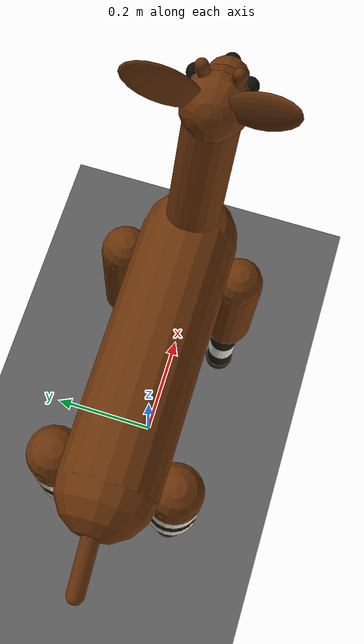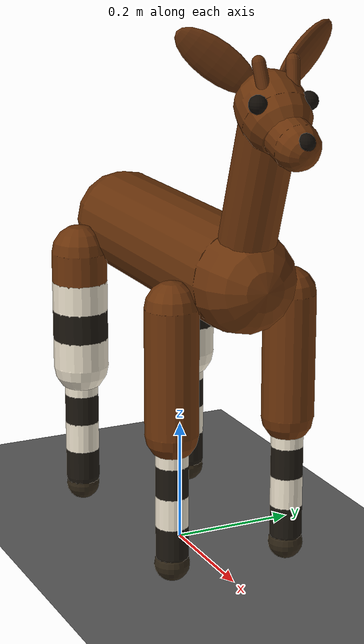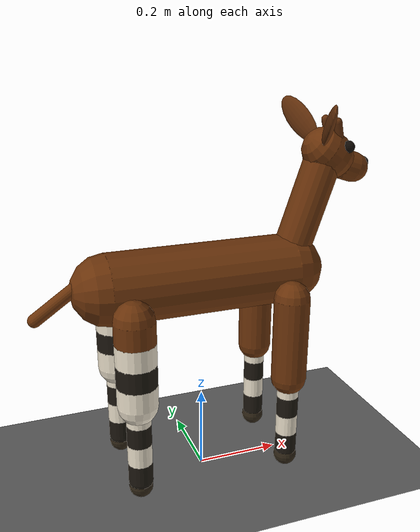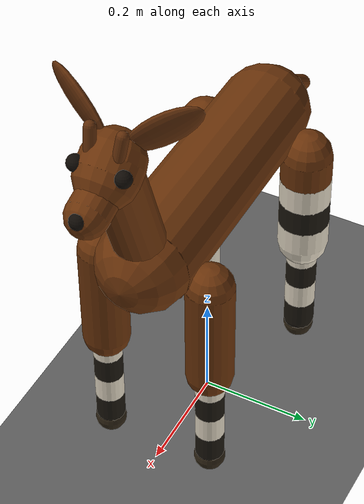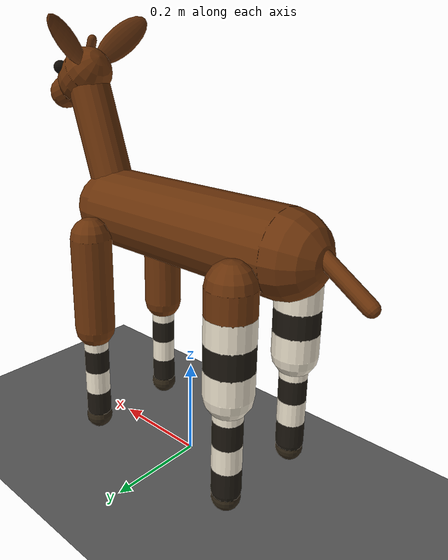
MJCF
<mujoco model="okapi">

  <!-- ── Compiler ──────────────────────────────────────────────────────────── -->
  <compiler angle="radian" autolimits="true"/>

  <!-- ── Physics (MJX-optimised) ───────────────────────────────────────────── -->
  <!--   implicitfast  : stable at larger dt, ideal for GPU rollouts           -->
  <!--   CG solver     : fast sparse solve, native to MJX                      -->
  <!--   low iter count: keeps per-step cost cheap on GPU                      -->
  <option
    timestep      = "0.004"
    integrator    = "RK4"
    iterations    = "1"
    ls_iterations = "5"
    gravity       = "0 0 -9.81"/>

  <size nconmax="100" njmax="500"/>

  <!-- ── Visuals ───────────────────────────────────────────────────────────── -->
  <visual>
    <map znear="0.005" zfar="60"/>
    <rgba haze="0.18 0.26 0.36 1"/>
    <global offwidth="1280" offheight="720" elevation="-20" azimuth="130"/>
    <quality shadowsize="4096" offsamples="8"/>
  </visual>

  <statistic center="0 0 0.4" extent="1.6"/>

  <!-- ── Assets ────────────────────────────────────────────────────────────── -->
  <asset>
    <texture type="skybox" builtin="gradient"
             rgb1=".45 .62 .78" rgb2=".06 .10 .16" width="512" height="512"/>
    <texture name="texplane" type="2d" builtin="checker"
             rgb1=".28 .28 .28" rgb2=".46 .46 .46" width="512" height="512"/>
    <material name="MatPlane" reflectance="0.3" texture="texplane"
              texrepeat="5 5" texuniform="true"/>

  </asset>

  <!-- ── Defaults ──────────────────────────────────────────────────────────── -->
  <!--   class "vis"  : decorative geoms — no collision, zero mass             -->
  <!--   class "phys" : physical limb geoms — collision on                     -->
  <!--   class "foot" : high-friction foot spheres                             -->
  <default>
    <geom condim="3" friction="0.8 0.1 0.1" solref="0.02 1" solimp="0.9 0.95 0.001"/>
    <joint type="hinge" limited="true" damping="1.0" armature="0.01" frictionloss="0.01"/>
    <!-- position actuator defaults (kp overridden per-joint below) -->

    <default class="vis">
      <geom contype="0" conaffinity="0" mass="0"/>
    </default>
    <default class="phys">
      <geom contype="1" conaffinity="1" rgba="0.42 0.20 0.04 1"/>
    </default>
    <default class="foot">
      <geom type="sphere" size="0.028" contype="1" conaffinity="1"
            rgba="0.18 0.14 0.08 1" friction="1.4 0.05 0.05" solref="0.01 1"/>
    </default>
  </default>

  <!--  WORLD                                                                   -->
  <worldbody>
    <light name="sun"  directional="true" diffuse=".92 .86 .72" specular=".5 .45 .3"
           pos="5 -4 14" dir="-0.35 0.28 -5"/>
    <light name="fill" directional="true" diffuse=".28 .33 .42" specular="0 0 0"
           pos="-5 5 6" dir="0.5 -0.5 -1"/>
    <geom name="floor" size="0 0 .5" type="plane"
          material="MatPlane" contype="1" conaffinity="1"/>

    <body name="torso" pos="0 0 0.5">
      <camera name="track" pos="0.846 -1.3 0.416" xyaxes="0.866 0.500 0.000 -0.171 0.296 0.940" mode="trackcom"/>
      <camera name="top" pos="-1.5 0 1.5" xyaxes="0 -1 0 0.7 0 0.7" mode="trackcom"/>
      <camera name="side" pos="0 -2 .8" xyaxes="1 0 0 0 1 2" mode="trackcom"/>
      <camera name="back" pos="-1.5 0 .5" xyaxes="0 -1 0 1 0 3" mode="trackcom"/>

      <freejoint name="root"/>

      <!-- IMU site — used to compute gravity vector and local velocities -->
      <site name="imu" pos="0 0 0" size="0.005" rgba="0 0 1 0"/>

      <!-- Physics capsule: body collision + inertia -->
      <geom name="torso" type="capsule" size="0.082"
            fromto="-0.22 0 0  0.22 0 0" class="phys"/>

      <!-- Neck (visual) -->
      <geom name="neck" type="capsule" size="0.044"
            fromto="0.22 0 0.022  0.3 0 0.255"
            rgba="0.42 0.20 0.04 1" class="vis"/>

      <!-- Cranium — sphere gives a round, natural skull shape.
           Center (0.30, 0, 0.275), radius 0.058.
           Neck tip at (0.28, 0, 0.255) sits inside the sphere → clean merge. -->
      <geom name="head" type="capsule" size="0.052" fromto="0.3 0 0.275  0.32 0 0.26"
            rgba="0.42 0.20 0.04 1" class="vis"/>

      <!-- Snout — short muzzle starting from front of cranium sphere.
           ~55% of skull diameter long, matching okapi proportions.            -->
      <geom name="snout" type="capsule" size="0.035"
            fromto="0.35 0 0.240  0.38 0 0.23"
            rgba="0.42 0.20 0.04 1" class="vis"/>
      <geom name="nose" type="sphere" size="0.014"
            rgba="0.06 0.04 0.02 1" pos="0.405 0 0.24" class="vis"/>

      <!-- Eyes — on the front-side of the sphere -->d
      <geom name="eye_l" type="sphere" size="0.014"
            rgba="0.06 0.04 0.02 1" pos="0.34  0.04 0.285" class="vis"/>
      <geom name="eye_r" type="sphere" size="0.014"
            rgba="0.06 0.04 0.02 1" pos="0.34 -0.04 0.285" class="vis"/>

      <geom name="ossicone_l" type="capsule" size="0.01 0.02 0.030"
            rgba="0.38 0.18 0.04 1" pos="0.32  0.025 0.32"
            euler=" -0.1 -0.250 0.1" class="vis"/>
      <geom name="ossicone_r" type="capsule" size="0.01 0.02 0.030"
            rgba="0.38 0.18 0.04 1" pos="0.32 -0.025 0.32"
            euler="0.1 -0.250 -0.1" class="vis"/>

      <geom name="ear_l" type="ellipsoid" size="0.01 0.03 0.070"
            rgba="0.38 0.18 0.04 1" pos="0.27  0.07 0.338"
            euler=" -0.9 -0.250 0.4" class="vis"/>
      <geom name="ear_r" type="ellipsoid" size="0.01 0.03 0.070"
            rgba="0.38 0.18 0.04 1" pos="0.27 -0.07 0.338"
            euler="0.9 -0.250 -0.4" class="vis"/>

      <!-- Tail (visual) — starts from upper-rear of torso, carried higher -->
      <geom name="tail" type="capsule" size="0.015"
            fromto="-0.22 0 0.06  -0.38 0 -0.05"
            rgba="0.42 0.20 0.04 1" class="vis"/>

      <!-- ── FRONT LEFT ──────────────────────────────────────────────────── -->
      <body name="thigh_FL" pos="0.185  0.100 -0.040">
        <joint name="hip_ab_FL" axis="1 0 0" range="-0.50 0.50"/>
        <joint name="hip_fl_FL" axis="0 1 0" range="-1.05 0.80"/>
        <geom  name="thigh_FL"  type="capsule" size="0.042"
               fromto="0 0 0  0 0 -0.200" class="phys"/>
        <body name="shin_FL" pos="0 0 -0.200">
          <joint name="knee_FL" axis="0 1 0" range="-2.60 0.05"/>
          <geom  name="shin_FL"   type="capsule" size="0.025" fromto="0 0 0  0 0 -0.200" class="phys"/>
          <!-- visual stripe bands — no mass, no collision -->
          <geom name="shin_FL_v1" type="capsule" size="0.026" fromto="0 0 0      0 0 -0.050" rgba="0.90 0.86 0.78 1" class="vis"/>
          <geom name="shin_FL_v2" type="capsule" size="0.026" fromto="0 0 -0.050 0 0 -0.100" rgba="0.10 0.08 0.05 1" class="vis"/>
          <geom name="shin_FL_v3" type="capsule" size="0.026" fromto="0 0 -0.100 0 0 -0.150" rgba="0.90 0.86 0.78 1" class="vis"/>
          <geom name="shin_FL_v4" type="capsule" size="0.026" fromto="0 0 -0.150 0 0 -0.200" rgba="0.10 0.08 0.05 1" class="vis"/>
          <body name="foot_FL" pos="0 0 -0.214">
            <site name="foot_FL" pos="0 0 0" size="0.005" rgba="0 1 0 0"/>
            <geom name="foot_FL" class="foot"/>
          </body>
        </body>
      </body>

      <!-- ── FRONT RIGHT ─────────────────────────────────────────────────── -->
      <body name="thigh_FR" pos="0.185 -0.100 -0.040">
        <joint name="hip_ab_FR" axis="1 0 0" range="-0.50 0.50"/>
        <joint name="hip_fl_FR" axis="0 1 0" range="-1.05 0.80"/>
        <geom  name="thigh_FR"  type="capsule" size="0.042"
               fromto="0 0 0  0 0 -0.200" class="phys"/>
        <body name="shin_FR" pos="0 0 -0.200">
          <joint name="knee_FR" axis="0 1 0" range="-2.60 0.05"/>
          <geom  name="shin_FR"   type="capsule" size="0.025" fromto="0 0 0  0 0 -0.200" class="phys"/>
          <!-- visual stripe bands — no mass, no collision -->
          <geom name="shin_FR_v1" type="capsule" size="0.026" fromto="0 0 0      0 0 -0.050" rgba="0.90 0.86 0.78 1" class="vis"/>
          <geom name="shin_FR_v2" type="capsule" size="0.026" fromto="0 0 -0.050 0 0 -0.100" rgba="0.10 0.08 0.05 1" class="vis"/>
          <geom name="shin_FR_v3" type="capsule" size="0.026" fromto="0 0 -0.100 0 0 -0.150" rgba="0.90 0.86 0.78 1" class="vis"/>
          <geom name="shin_FR_v4" type="capsule" size="0.026" fromto="0 0 -0.150 0 0 -0.200" rgba="0.10 0.08 0.05 1" class="vis"/>
          <body name="foot_FR" pos="0 0 -0.214">
            <site name="foot_FR" pos="0 0 0" size="0.005" rgba="0 1 0 0"/>
            <geom name="foot_FR" class="foot"/>
          </body>
        </body>
      </body>

      <!-- ── REAR LEFT ───────────────────────────────────────────────────── -->
      <body name="thigh_RL" pos="-0.185  0.100 -0.040">
        <joint name="hip_ab_RL" axis="1 0 0" range="-0.50 0.50"/>
        <joint name="hip_fl_RL" axis="0 1 0" range="-0.80 1.05"/>
        <geom  name="thigh_RL"   type="capsule" size="0.046" fromto="0 0 0  0 0 -0.200" class="phys"/>
        <!-- visual stripe bands — no mass, no collision -->
        <geom name="thigh_RL_v1" type="capsule" size="0.0465" fromto="0 0 0      0 0 -0.050" rgba="0.42 0.20 0.04 1" class="vis"/>
        <geom name="thigh_RL_v2" type="capsule" size="0.0465" fromto="0 0 -0.050 0 0 -0.100" rgba="0.90 0.86 0.78 1" class="vis"/>
        <geom name="thigh_RL_v3" type="capsule" size="0.0465" fromto="0 0 -0.100 0 0 -0.150" rgba="0.10 0.08 0.05 1" class="vis"/>
        <geom name="thigh_RL_v4" type="capsule" size="0.0465" fromto="0 0 -0.150 0 0 -0.200" rgba="0.90 0.86 0.78 1" class="vis"/>
        <body name="shin_RL" pos="0 0 -0.200">
          <joint name="knee_RL" axis="0 1 0" range="-2.60 0.05"/>
          <geom  name="shin_RL"   type="capsule" size="0.028" fromto="0 0 0  0 0 -0.200" class="phys"/>
          <!-- visual stripe bands — no mass, no collision -->
          <geom name="shin_RL_v1" type="capsule" size="0.0285" fromto="0 0 0      0 0 -0.050" rgba="0.90 0.86 0.78 1" class="vis"/>
          <geom name="shin_RL_v2" type="capsule" size="0.0285" fromto="0 0 -0.050 0 0 -0.100" rgba="0.10 0.08 0.05 1" class="vis"/>
          <geom name="shin_RL_v3" type="capsule" size="0.0285" fromto="0 0 -0.100 0 0 -0.150" rgba="0.90 0.86 0.78 1" class="vis"/>
          <geom name="shin_RL_v4" type="capsule" size="0.0285" fromto="0 0 -0.150 0 0 -0.200" rgba="0.10 0.08 0.05 1" class="vis"/>
          <body name="foot_RL" pos="0 0 -0.214">
            <site name="foot_RL" pos="0 0 0" size="0.005" rgba="0 1 0 0"/>
            <geom name="foot_RL" class="foot"/>
          </body>
        </body>
      </body>

      <!-- ── REAR RIGHT ──────────────────────────────────────────────────── -->
      <body name="thigh_RR" pos="-0.185 -0.100 -0.040">
        <joint name="hip_ab_RR" axis="1 0 0" range="-0.50 0.50"/>
        <joint name="hip_fl_RR" axis="0 1 0" range="-0.80 1.05"/>
        <geom  name="thigh_RR"   type="capsule" size="0.046" fromto="0 0 0  0 0 -0.200" class="phys"/>
        <!-- visual stripe bands — no mass, no collision -->
        <geom name="thigh_RR_v1" type="capsule" size="0.0465" fromto="0 0 0      0 0 -0.050" rgba="0.42 0.20 0.04 1" class="vis"/>
        <geom name="thigh_RR_v2" type="capsule" size="0.0465" fromto="0 0 -0.050 0 0 -0.100" rgba="0.90 0.86 0.78 1" class="vis"/>
        <geom name="thigh_RR_v3" type="capsule" size="0.0465" fromto="0 0 -0.100 0 0 -0.150" rgba="0.10 0.08 0.05 1" class="vis"/>
        <geom name="thigh_RR_v4" type="capsule" size="0.0465" fromto="0 0 -0.150 0 0 -0.200" rgba="0.90 0.86 0.78 1" class="vis"/>
        <body name="shin_RR" pos="0 0 -0.200">
          <joint name="knee_RR" axis="0 1 0" range="-2.60 0.05"/>
          <geom  name="shin_RR"   type="capsule" size="0.028" fromto="0 0 0  0 0 -0.200" class="phys"/>
          <!-- visual stripe bands — no mass, no collision -->
          <geom name="shin_RR_v1" type="capsule" size="0.0285" fromto="0 0 0      0 0 -0.050" rgba="0.90 0.86 0.78 1" class="vis"/>
          <geom name="shin_RR_v2" type="capsule" size="0.0285" fromto="0 0 -0.050 0 0 -0.100" rgba="0.10 0.08 0.05 1" class="vis"/>
          <geom name="shin_RR_v3" type="capsule" size="0.0285" fromto="0 0 -0.100 0 0 -0.150" rgba="0.90 0.86 0.78 1" class="vis"/>
          <geom name="shin_RR_v4" type="capsule" size="0.0285" fromto="0 0 -0.150 0 0 -0.200" rgba="0.10 0.08 0.05 1" class="vis"/>
          <body name="foot_RR" pos="0 0 -0.214">
            <site name="foot_RR" pos="0 0 0" size="0.005" rgba="0 1 0 0"/>
            <geom name="foot_RR" class="foot"/>
          </body>
        </body>
      </body>

    </body><!-- /torso -->
  </worldbody>

  <contact>
    <exclude body1="torso"    body2="thigh_FL"/>
    <exclude body1="torso"    body2="thigh_FR"/>
    <exclude body1="torso"    body2="thigh_RL"/>
    <exclude body1="torso"    body2="thigh_RR"/>
    <exclude body1="thigh_FL" body2="shin_FL"/>
    <exclude body1="thigh_FR" body2="shin_FR"/>
    <exclude body1="thigh_RL" body2="shin_RL"/>
    <exclude body1="thigh_RR" body2="shin_RR"/>
    <exclude body1="shin_FL"  body2="foot_FL"/>
    <exclude body1="shin_FR"  body2="foot_FR"/>
    <exclude body1="shin_RL"  body2="foot_RL"/>
    <exclude body1="shin_RR"  body2="foot_RR"/>
  </contact>

  <actuator>
    <position name="hip_ab_FL" joint="hip_ab_FL" kp="40" ctrllimited="true" ctrlrange="-0.50 0.50"/>
    <position name="hip_fl_FL" joint="hip_fl_FL" kp="100" ctrllimited="true" ctrlrange="-1.05 0.80"/>
    <position name="knee_FL"   joint="knee_FL"   kp="100" ctrllimited="true" ctrlrange="-2.60 0.05"/>

    <position name="hip_ab_FR" joint="hip_ab_FR" kp="40" ctrllimited="true" ctrlrange="-0.50 0.50"/>
    <position name="hip_fl_FR" joint="hip_fl_FR" kp="100" ctrllimited="true" ctrlrange="-1.05 0.80"/>
    <position name="knee_FR"   joint="knee_FR"   kp="100" ctrllimited="true" ctrlrange="-2.60 0.05"/>

    <position name="hip_ab_RL" joint="hip_ab_RL" kp="40" ctrllimited="true" ctrlrange="-0.50 0.50"/>
    <position name="hip_fl_RL" joint="hip_fl_RL" kp="100" ctrllimited="true" ctrlrange="-0.80 1.05"/>
    <position name="knee_RL"   joint="knee_RL"   kp="100" ctrllimited="true" ctrlrange="-2.60 0.05"/>

    <position name="hip_ab_RR" joint="hip_ab_RR" kp="40" ctrllimited="true" ctrlrange="-0.50 0.50"/>
    <position name="hip_fl_RR" joint="hip_fl_RR" kp="100" ctrllimited="true" ctrlrange="-0.80 1.05"/>
    <position name="knee_RR"   joint="knee_RR"   kp="100" ctrllimited="true" ctrlrange="-2.60 0.05"/>
  </actuator>

  <sensor>
    <framelinvel  name="torso_linvel"  objtype="body" objname="torso"/>
    <frameangvel  name="torso_angvel"  objtype="body" objname="torso"/>
    <framelinvel  name="foot_FL_vel"   objtype="site" objname="foot_FL"/>
    <framelinvel  name="foot_FR_vel"   objtype="site" objname="foot_FR"/>
    <framelinvel  name="foot_RL_vel"   objtype="site" objname="foot_RL"/>
    <framelinvel  name="foot_RR_vel"   objtype="site" objname="foot_RR"/>
    <contact name="foot_FR_floor_found" geom1="foot_FR" geom2="floor" reduce="mindist" num="1" data="found"/>
    <contact name="foot_FL_floor_found" geom1="foot_FL" geom2="floor" reduce="mindist" num="1" data="found"/>
    <contact name="foot_RL_floor_found" geom1="foot_RL" geom2="floor" reduce="mindist" num="1" data="found"/>
    <contact name="foot_RR_floor_found" geom1="foot_RR" geom2="floor" reduce="mindist" num="1" data="found"/>
  </sensor>

  <keyframe>
    <key name="stand"
         qpos="0 0 0.48  1 0 0 0
               0  0.0 -0.20
               0  0.0 -0.20
               0  0.0 -0.20
               0  0.0 -0.20"
         ctrl="0 0 -0.20  0 0 -0.20  0 0 -0.20  0 0 -0.20"/>
  </keyframe>

</mujoco>
